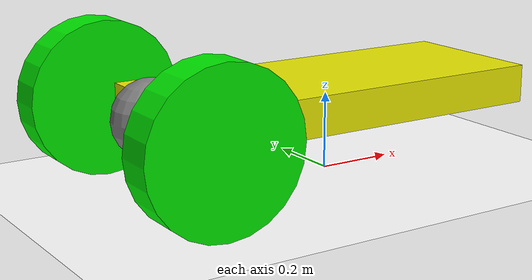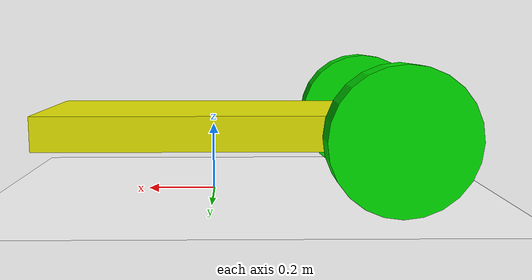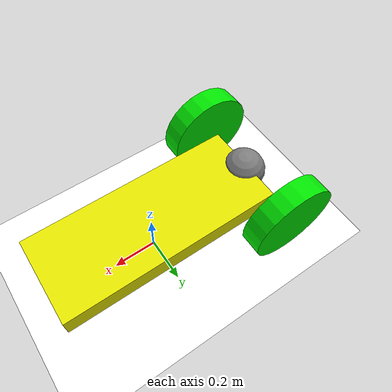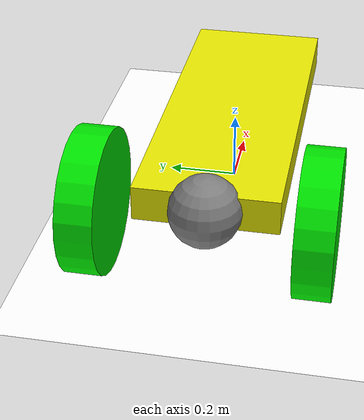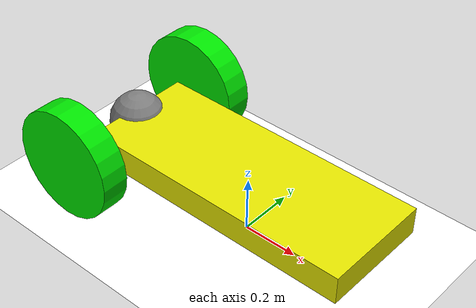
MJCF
<mujoco>
  <option gravity="0 0 -9.81"/>
  <worldbody>
    <light diffuse=".5 .5 .5" pos="0 0 10" dir="0 0 -1"/>
    <geom type="plane" size="5 5 0.1" rgba="1 1 1 1"/>
    <body name="chassis" pos="0 0 0.2" euler="0 90 0">
      <joint type="free" />
      <geom type="box" size=".05 .2 .5" rgba=".9 .9 0 1"/>
      <site name="marker" pos = "0 0 -0.5" euler="0 -90 0" size="0.1" />
      <body pos="0 0.3 -0.5" euler="90 0 0">
        <joint name="left_wheel_joint" type="hinge" axis="0 0 -1"/>
        <geom name="left_wheel_link" type="cylinder" size="0.2 0.05" rgba="0 .9 0 1"/>
      </body>
      <body pos="0 -0.3 -0.5" euler="90 0 0">
        <joint name="right_wheel_joint" type="hinge" axis="0 0 -1"/>
        <geom name="right_wheel_link" type="cylinder" size="0.2 0.05" rgba="0 .9 0 1"/>
      </body>
    </body>
  </worldbody>
  <sensor>
    <framepos objtype="site" objname="marker"/>
  </sensor>
  <actuator>
    <velocity name="left_velocity_servo" joint="left_wheel_joint" kv="100"/>
    <velocity name="right_velocity_servo" joint="right_wheel_joint" kv="100"/>
  </actuator>
</mujoco>
